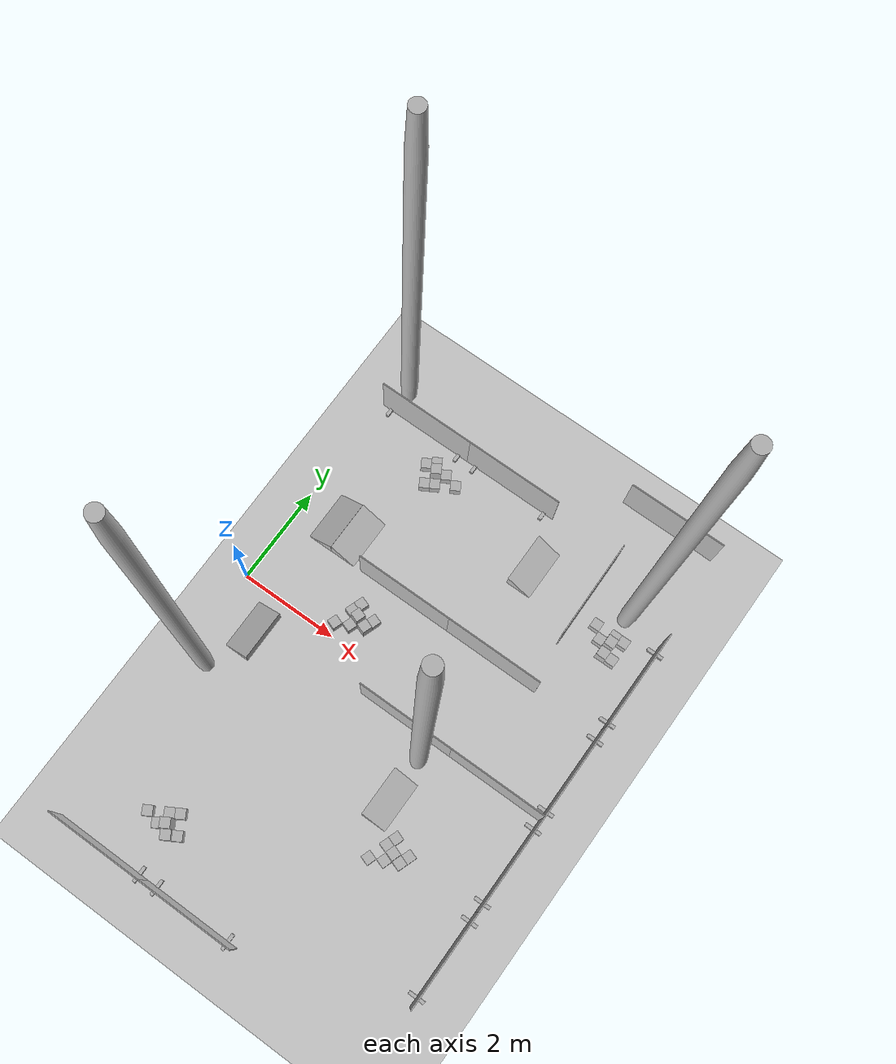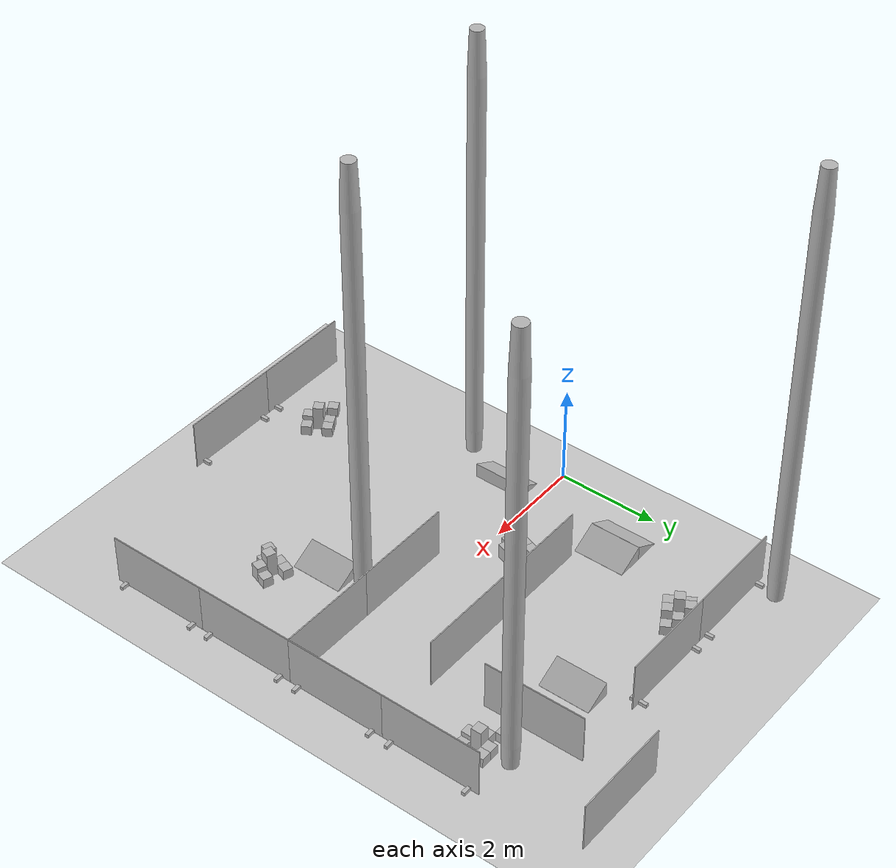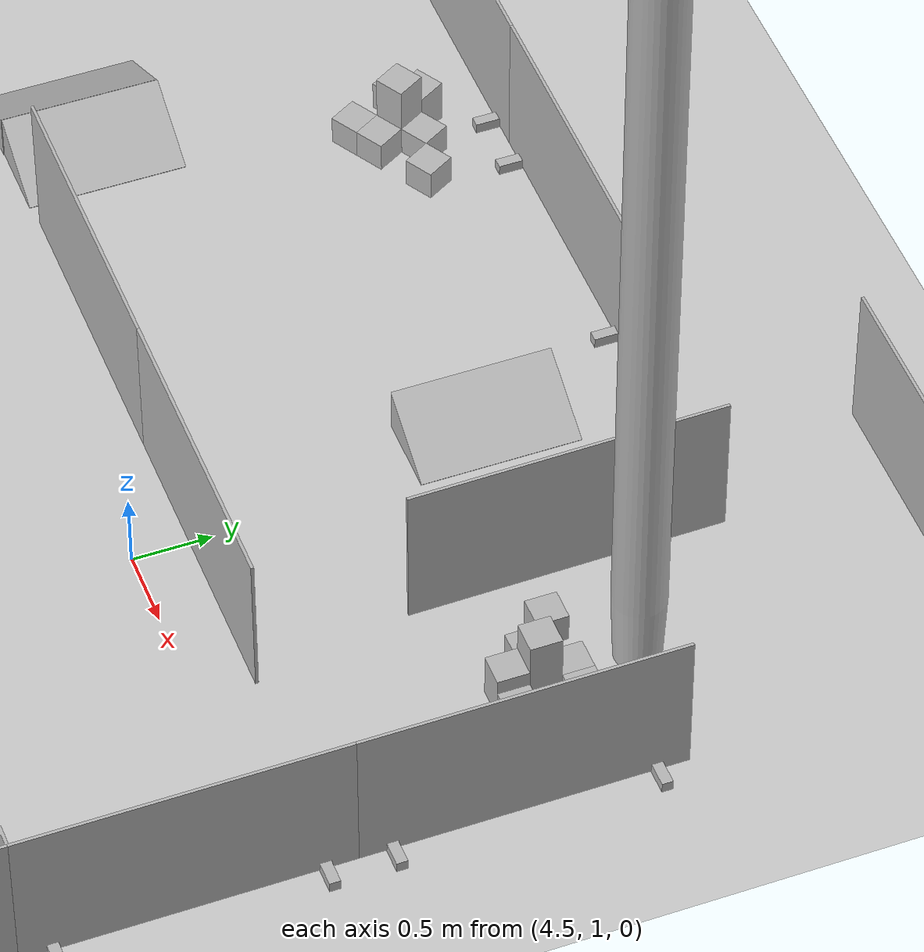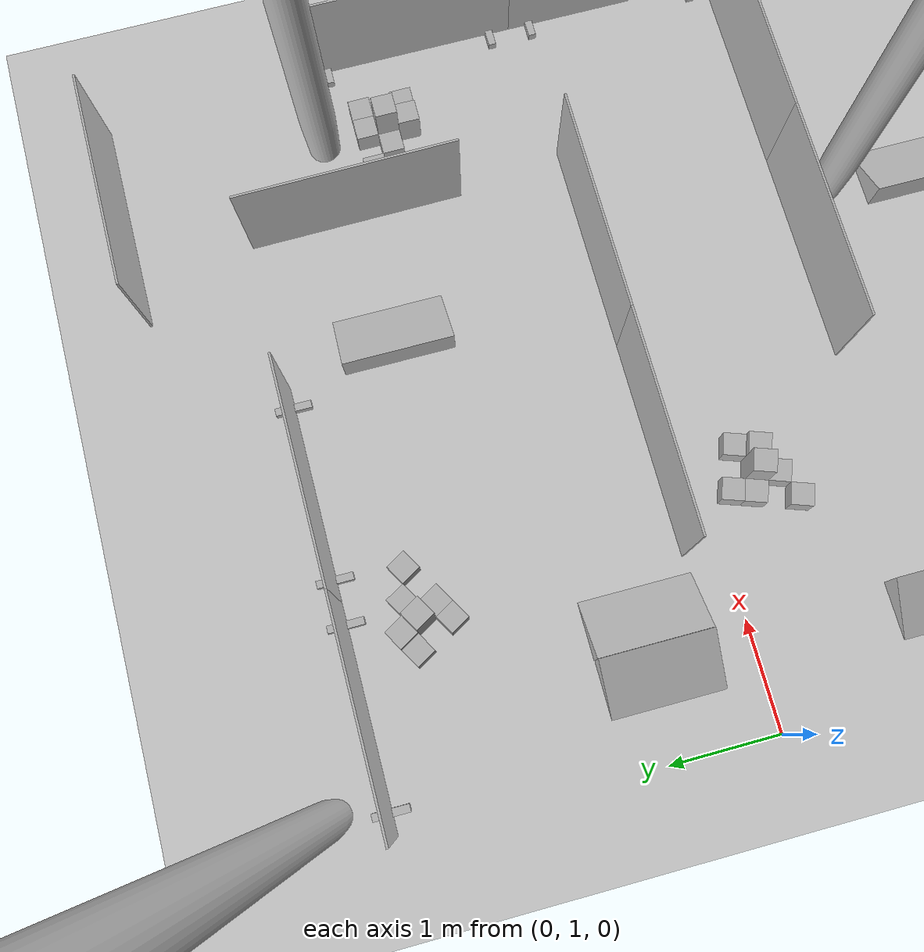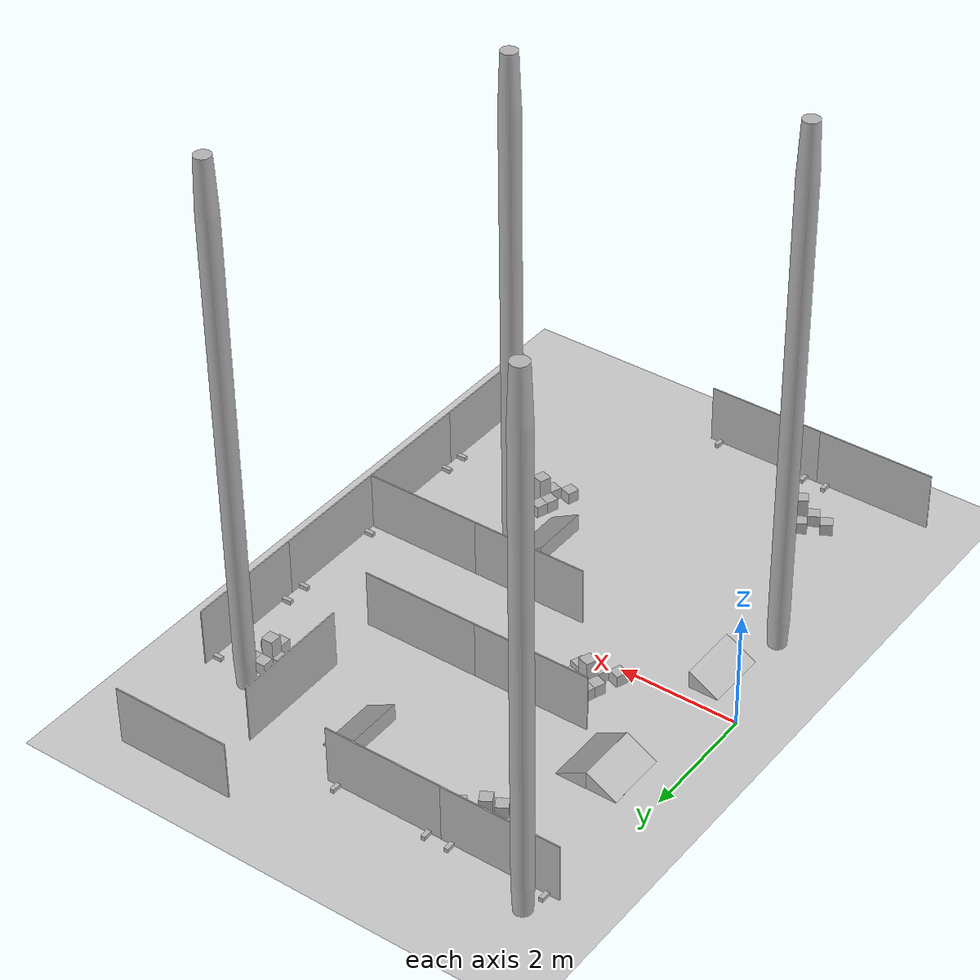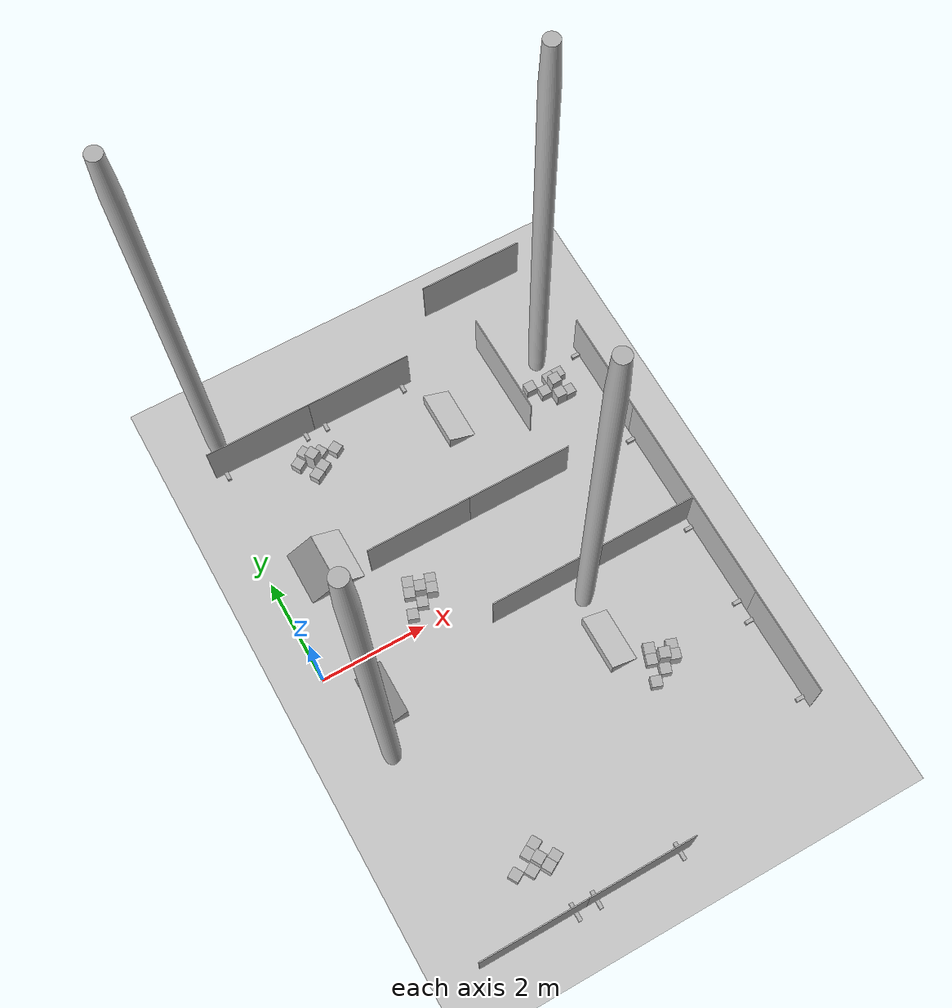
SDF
<sdf version="1.4">
 <world name="arena_HKT_17">
  <include><uri>model://ground_plane</uri></include>
  <include>
   <name>cube_20x20.1714</name>
   <pose>6.283951282501221 3.0660696029663086 0.10000000149011612  0.0 -0.0 3.141592502593994</pose>
   <uri>model://cube_20x20</uri>
  </include>
  <include>
   <name>cube_20x20.1715</name>
   <pose>6.083951473236084 2.866069793701172 0.10000000149011612  0.0 -0.0 3.141592502593994</pose>
   <uri>model://cube_20x20</uri>
  </include>
  <include>
   <name>cube_20x20.1716</name>
   <pose>5.883951663970947 3.0660696029663086 0.10000000149011612  0.0 -0.0 3.141592502593994</pose>
   <uri>model://cube_20x20</uri>
  </include>
  <include>
   <name>cube_20x20.1717</name>
   <pose>6.483951568603516 3.0660696029663086 0.10000000149011612  0.0 -0.0 3.141592502593994</pose>
   <uri>model://cube_20x20</uri>
  </include>
  <include>
   <name>cube_20x20.1718</name>
   <pose>6.483951568603516 2.666069984436035 0.10000000149011612  0.0 -0.0 3.141592502593994</pose>
   <uri>model://cube_20x20</uri>
  </include>
  <include>
   <name>cube_20x30.315</name>
   <pose>6.283951282501221 2.666069984436035 0.15000000596046448  0.0 -0.0 3.141592502593994</pose>
   <uri>model://cube_20x30</uri>
  </include>
  <include>
   <name>cube_20x50.309</name>
   <pose>6.283951282501221 2.866069793701172 0.25  0.0 -0.0 3.141592502593994</pose>
   <uri>model://cube_20x50</uri>
  </include>
  <include>
   <name>cube_20x20.1719</name>
   <pose>6.283951282501221 3.0660696029663086 0.10000000149011612  0.0 -0.0 3.141592502593994</pose>
   <uri>model://cube_20x20</uri>
  </include>
  <include>
   <name>cube_20x20.1720</name>
   <pose>6.083951473236084 2.866069793701172 0.10000000149011612  0.0 -0.0 3.141592502593994</pose>
   <uri>model://cube_20x20</uri>
  </include>
  <include>
   <name>cube_20x20.1721</name>
   <pose>5.883951663970947 3.0660696029663086 0.10000000149011612  0.0 -0.0 3.141592502593994</pose>
   <uri>model://cube_20x20</uri>
  </include>
  <include>
   <name>cube_20x20.1722</name>
   <pose>6.483951568603516 3.0660696029663086 0.10000000149011612  0.0 -0.0 3.141592502593994</pose>
   <uri>model://cube_20x20</uri>
  </include>
  <include>
   <name>cube_20x20.1723</name>
   <pose>6.483951568603516 2.666069984436035 0.10000000149011612  0.0 -0.0 3.141592502593994</pose>
   <uri>model://cube_20x20</uri>
  </include>
  <include>
   <name>cube_20x30.316</name>
   <pose>6.283951282501221 2.666069984436035 0.15000000596046448  0.0 -0.0 3.141592502593994</pose>
   <uri>model://cube_20x30</uri>
  </include>
  <include>
   <name>cube_20x50.310</name>
   <pose>6.283951282501221 2.866069793701172 0.25  0.0 -0.0 3.141592502593994</pose>
   <uri>model://cube_20x50</uri>
  </include>
  <include>
   <name>ramp.154</name>
   <pose>1.2565653324127197 1.8507144451141357 0.15000000596046448  0.0 0.0 0.0</pose>
   <uri>model://ramp</uri>
  </include>
  <include>
   <name>ramp.155</name>
   <pose>0.7436184883117676 1.8457143306732178 0.15000000596046448  0.0 -0.0 3.141592502593994</pose>
   <uri>model://ramp</uri>
  </include>
  <include>
   <name>wall_2x1.683</name>
   <pose>7.071430206298828 -3.531057596206665 0.5130000114440918  0.0 -0.0 4.71238899230957</pose>
   <uri>model://wall_2x1</uri>
  </include>
  <include>
   <name>wall_2x1.684</name>
   <pose>4.071430206298828 -0.5310573577880859 0.5130000114440918  0.0 -0.0 3.141592502593994</pose>
   <uri>model://wall_2x1</uri>
  </include>
  <include>
   <name>wall_2x1.685</name>
   <pose>7.071430206298828 -1.531057596206665 0.5130000114440918  0.0 -0.0 4.71238899230957</pose>
   <uri>model://wall_2x1</uri>
  </include>
  <include>
   <name>wall_2x1.686</name>
   <pose>7.071430206298828 2.468942403793335 0.5130000114440918  0.0 -0.0 4.71238899230957</pose>
   <uri>model://wall_2x1</uri>
  </include>
  <include>
   <name>wall_2x1.687</name>
   <pose>7.071430206298828 0.46894240379333496 0.5130000114440918  0.0 -0.0 4.71238899230957</pose>
   <uri>model://wall_2x1</uri>
  </include>
  <include>
   <name>wall_2x1.688</name>
   <pose>6.071430206298828 -0.5310574769973755 0.5130000114440918  0.0 -0.0 3.141592502593994</pose>
   <uri>model://wall_2x1</uri>
  </include>
  <include>
   <name>wall_stand.1493</name>
   <pose>7.071430206298828 -4.331557273864746 0.03450000286102295  0.0 -0.0 3.141592502593994</pose>
   <uri>model://wall_stand</uri>
  </include>
  <include>
   <name>wall_stand.1494</name>
   <pose>7.071430206298828 -2.730557680130005 0.03450000286102295  0.0 -0.0 3.141592502593994</pose>
   <uri>model://wall_stand</uri>
  </include>
  <include>
   <name>wall_stand.1495</name>
   <pose>7.071430206298828 -2.3315577507019043 0.03450000286102295  0.0 -0.0 3.141592502593994</pose>
   <uri>model://wall_stand</uri>
  </include>
  <include>
   <name>wall_stand.1496</name>
   <pose>7.071430206298828 -0.7305576801300049 0.03450000286102295  0.0 -0.0 3.141592502593994</pose>
   <uri>model://wall_stand</uri>
  </include>
  <include>
   <name>wall_stand.1497</name>
   <pose>7.071430206298828 3.269442319869995 0.03450000286102295  0.0 -0.0 3.141592502593994</pose>
   <uri>model://wall_stand</uri>
  </include>
  <include>
   <name>wall_stand.1498</name>
   <pose>7.071430206298828 1.6684424877166748 0.03450000286102295  0.0 -0.0 3.141592502593994</pose>
   <uri>model://wall_stand</uri>
  </include>
  <include>
   <name>wall_stand.1499</name>
   <pose>7.071430206298828 -0.3315577507019043 0.03450000286102295  0.0 -0.0 3.141592502593994</pose>
   <uri>model://wall_stand</uri>
  </include>
  <include>
   <name>wall_stand.1500</name>
   <pose>7.071430206298828 1.2694423198699951 0.03450000286102295  0.0 -0.0 3.141592502593994</pose>
   <uri>model://wall_stand</uri>
  </include>
  <include>
   <name>wall_2x1.692</name>
   <pose>3.010645627975464 -5.530285835266113 0.5130000114440918  0.0 -0.0 3.141592502593994</pose>
   <uri>model://wall_2x1</uri>
  </include>
  <include>
   <name>wall_2x1.693</name>
   <pose>1.010645866394043 -5.530285835266113 0.5130000114440918  0.0 -0.0 3.141592502593994</pose>
   <uri>model://wall_2x1</uri>
  </include>
  <include>
   <name>wall_stand.1508</name>
   <pose>3.811145544052124 -5.530285835266113 0.03450000286102295  0.0 -0.0 1.570796251296997</pose>
   <uri>model://wall_stand</uri>
  </include>
  <include>
   <name>wall_stand.1509</name>
   <pose>2.210145950317383 -5.530285835266113 0.03450000286102295  0.0 -0.0 1.570796251296997</pose>
   <uri>model://wall_stand</uri>
  </include>
  <include>
   <name>wall_stand.1511</name>
   <pose>1.8111457824707031 -5.530285835266113 0.03450000286102295  0.0 -0.0 1.570796251296997</pose>
   <uri>model://wall_stand</uri>
  </include>
  <include>
   <name>cube_20x20.1734</name>
   <pose>1.5919134616851807 -4.343883514404297 0.10000000149011612  0.0 -0.0 3.6651763916015625</pose>
   <uri>model://cube_20x20</uri>
  </include>
  <include>
   <name>cube_20x20.1735</name>
   <pose>1.5187044143676758 -4.617087364196777 0.10000000149011612  0.0 -0.0 3.6651763916015625</pose>
   <uri>model://cube_20x20</uri>
  </include>
  <include>
   <name>cube_20x20.1736</name>
   <pose>1.2455005645751953 -4.543877601623535 0.10000000149011612  0.0 -0.0 3.6651763916015625</pose>
   <uri>model://cube_20x20</uri>
  </include>
  <include>
   <name>cube_20x20.1737</name>
   <pose>1.7651203870773315 -4.2438859939575195 0.10000000149011612  0.0 -0.0 3.6651763916015625</pose>
   <uri>model://cube_20x20</uri>
  </include>
  <include>
   <name>cube_20x20.1738</name>
   <pose>1.9651148319244385 -4.590298652648926 0.10000000149011612  0.0 -0.0 3.6651763916015625</pose>
   <uri>model://cube_20x20</uri>
  </include>
  <include>
   <name>cube_20x20.1739</name>
   <pose>1.5919134616851807 -4.343883514404297 0.10000000149011612  0.0 -0.0 3.6651763916015625</pose>
   <uri>model://cube_20x20</uri>
  </include>
  <include>
   <name>cube_20x20.1740</name>
   <pose>1.5187044143676758 -4.617087364196777 0.10000000149011612  0.0 -0.0 3.6651763916015625</pose>
   <uri>model://cube_20x20</uri>
  </include>
  <include>
   <name>cube_20x20.1741</name>
   <pose>1.2455005645751953 -4.543877601623535 0.10000000149011612  0.0 -0.0 3.6651763916015625</pose>
   <uri>model://cube_20x20</uri>
  </include>
  <include>
   <name>cube_20x20.1742</name>
   <pose>1.7651203870773315 -4.2438859939575195 0.10000000149011612  0.0 -0.0 3.6651763916015625</pose>
   <uri>model://cube_20x20</uri>
  </include>
  <include>
   <name>cube_20x20.1743</name>
   <pose>1.9651148319244385 -4.590298652648926 0.10000000149011612  0.0 -0.0 3.6651763916015625</pose>
   <uri>model://cube_20x20</uri>
  </include>
  <include>
   <name>cube_20x30.319</name>
   <pose>1.7919080257415771 -4.690296173095703 0.15000000596046448  0.0 -0.0 3.6651763916015625</pose>
   <uri>model://cube_20x30</uri>
  </include>
  <include>
   <name>cube_20x30.320</name>
   <pose>1.7919080257415771 -4.690296173095703 0.15000000596046448  0.0 -0.0 3.6651763916015625</pose>
   <uri>model://cube_20x30</uri>
  </include>
  <include>
   <name>cube_20x50.313</name>
   <pose>1.691910743713379 -4.51708984375 0.25  0.0 -0.0 3.6651763916015625</pose>
   <uri>model://cube_20x50</uri>
  </include>
  <include>
   <name>cube_20x50.314</name>
   <pose>1.691910743713379 -4.51708984375 0.25  0.0 -0.0 3.6651763916015625</pose>
   <uri>model://cube_20x50</uri>
  </include>
  <include>
   <name>cube_20x20.1744</name>
   <pose>2.0343916416168213 0.613365888595581 0.10000000149011612  0.0 0.0 4.376082897186279</pose>
   <uri>model://cube_20x20</uri>
  </include>
  <include>
   <name>cube_20x20.1745</name>
   <pose>2.1571874618530273 0.358569860458374 0.10000000149011612  0.0 0.0 4.376082897186279</pose>
   <uri>model://cube_20x20</uri>
  </include>
  <include>
   <name>cube_20x20.1746</name>
   <pose>1.902390956878662 0.23577475547790527 0.10000000149011612  0.0 0.0 4.376082897186279</pose>
   <uri>model://cube_20x20</uri>
  </include>
  <include>
   <name>cube_20x20.1747</name>
   <pose>2.1003925800323486 0.8021619319915771 0.10000000149011612  0.0 0.0 4.376082897186279</pose>
   <uri>model://cube_20x20</uri>
  </include>
  <include>
   <name>cube_20x20.1748</name>
   <pose>2.4779841899871826 0.6701610088348389 0.10000000149011612  0.0 0.0 4.376082897186279</pose>
   <uri>model://cube_20x20</uri>
  </include>
  <include>
   <name>cube_20x20.1749</name>
   <pose>2.0343916416168213 0.613365888595581 0.10000000149011612  0.0 0.0 4.376082897186279</pose>
   <uri>model://cube_20x20</uri>
  </include>
  <include>
   <name>cube_20x20.1750</name>
   <pose>2.1571874618530273 0.358569860458374 0.10000000149011612  0.0 0.0 4.376082897186279</pose>
   <uri>model://cube_20x20</uri>
  </include>
  <include>
   <name>cube_20x20.1751</name>
   <pose>1.902390956878662 0.23577475547790527 0.10000000149011612  0.0 0.0 4.376082897186279</pose>
   <uri>model://cube_20x20</uri>
  </include>
  <include>
   <name>cube_20x20.1752</name>
   <pose>2.1003925800323486 0.8021619319915771 0.10000000149011612  0.0 0.0 4.376082897186279</pose>
   <uri>model://cube_20x20</uri>
  </include>
  <include>
   <name>cube_20x20.1753</name>
   <pose>2.4779841899871826 0.6701610088348389 0.10000000149011612  0.0 0.0 4.376082897186279</pose>
   <uri>model://cube_20x20</uri>
  </include>
  <include>
   <name>cube_20x30.321</name>
   <pose>2.4119834899902344 0.4813649654388428 0.15000000596046448  0.0 0.0 4.376082897186279</pose>
   <uri>model://cube_20x30</uri>
  </include>
  <include>
   <name>cube_20x30.322</name>
   <pose>2.4119834899902344 0.4813649654388428 0.15000000596046448  0.0 0.0 4.376082897186279</pose>
   <uri>model://cube_20x30</uri>
  </include>
  <include>
   <name>cube_20x50.315</name>
   <pose>2.2231879234313965 0.5473649501800537 0.25  0.0 0.0 4.376082897186279</pose>
   <uri>model://cube_20x50</uri>
  </include>
  <include>
   <name>cube_20x50.316</name>
   <pose>2.2231879234313965 0.5473649501800537 0.25  0.0 0.0 4.376082897186279</pose>
   <uri>model://cube_20x50</uri>
  </include>
  <include>
   <name>ramp.157</name>
   <pose>4.665114402770996 -1.8227006196975708 0.15000000596046448  0.0 0.0 0.0</pose>
   <uri>model://ramp</uri>
  </include>
  <include>
   <name>ramp.158</name>
   <pose>0.7436184883117676 -0.7737877368927002 0.15000000596046448  0.0 -0.0 3.141592502593994</pose>
   <uri>model://ramp</uri>
  </include>
  <include>
   <name>cube_20x20.1764</name>
   <pose>1.8325855731964111 3.536480188369751 0.10000000149011612  0.0 0.0 6.806769371032715</pose>
   <uri>model://cube_20x20</uri>
  </include>
  <include>
   <name>cube_20x20.1765</name>
   <pose>1.905794620513916 3.8096840381622314 0.10000000149011612  0.0 0.0 6.806769371032715</pose>
   <uri>model://cube_20x20</uri>
  </include>
  <include>
   <name>cube_20x20.1766</name>
   <pose>2.1789984703063965 3.7364747524261475 0.10000000149011612  0.0 0.0 6.806769371032715</pose>
   <uri>model://cube_20x20</uri>
  </include>
  <include>
   <name>cube_20x20.1767</name>
   <pose>1.6593786478042603 3.4364826679229736 0.10000000149011612  0.0 0.0 6.806769371032715</pose>
   <uri>model://cube_20x20</uri>
  </include>
  <include>
   <name>cube_20x20.1768</name>
   <pose>1.4593842029571533 3.782895803451538 0.10000000149011612  0.0 0.0 6.806769371032715</pose>
   <uri>model://cube_20x20</uri>
  </include>
  <include>
   <name>cube_20x20.1769</name>
   <pose>1.8325855731964111 3.536480188369751 0.10000000149011612  0.0 0.0 6.806769371032715</pose>
   <uri>model://cube_20x20</uri>
  </include>
  <include>
   <name>cube_20x20.1770</name>
   <pose>1.905794620513916 3.8096840381622314 0.10000000149011612  0.0 0.0 6.806769371032715</pose>
   <uri>model://cube_20x20</uri>
  </include>
  <include>
   <name>cube_20x20.1771</name>
   <pose>2.1789984703063965 3.7364747524261475 0.10000000149011612  0.0 0.0 6.806769371032715</pose>
   <uri>model://cube_20x20</uri>
  </include>
  <include>
   <name>cube_20x20.1772</name>
   <pose>1.6593786478042603 3.4364826679229736 0.10000000149011612  0.0 0.0 6.806769371032715</pose>
   <uri>model://cube_20x20</uri>
  </include>
  <include>
   <name>cube_20x20.1773</name>
   <pose>1.4593842029571533 3.782895803451538 0.10000000149011612  0.0 0.0 6.806769371032715</pose>
   <uri>model://cube_20x20</uri>
  </include>
  <include>
   <name>cube_20x30.325</name>
   <pose>1.6325910091400146 3.8828933238983154 0.15000000596046448  0.0 0.0 6.806769371032715</pose>
   <uri>model://cube_20x30</uri>
  </include>
  <include>
   <name>cube_20x30.326</name>
   <pose>1.6325910091400146 3.8828933238983154 0.15000000596046448  0.0 0.0 6.806769371032715</pose>
   <uri>model://cube_20x30</uri>
  </include>
  <include>
   <name>cube_20x50.319</name>
   <pose>1.732588291168213 3.7096869945526123 0.25  0.0 0.0 6.806769371032715</pose>
   <uri>model://cube_20x50</uri>
  </include>
  <include>
   <name>cube_20x50.320</name>
   <pose>1.732588291168213 3.7096869945526123 0.25  0.0 0.0 6.806769371032715</pose>
   <uri>model://cube_20x50</uri>
  </include>
  <include>
   <name>wall_2x1.695</name>
   <pose>3.0413644313812256 4.337547779083252 0.5130000114440918  0.0 -0.0 6.283185005187988</pose>
   <uri>model://wall_2x1</uri>
  </include>
  <include>
   <name>wall_2x1.697</name>
   <pose>1.0413646697998047 4.337548732757568 0.5130000114440918  0.0 -0.0 6.283185005187988</pose>
   <uri>model://wall_2x1</uri>
  </include>
  <include>
   <name>wall_stand.1515</name>
   <pose>3.841865062713623 4.337547779083252 0.03450000286102295  0.0 -0.0 4.71238899230957</pose>
   <uri>model://wall_stand</uri>
  </include>
  <include>
   <name>wall_stand.1516</name>
   <pose>2.2408647537231445 4.337548732757568 0.03450000286102295  0.0 -0.0 4.71238899230957</pose>
   <uri>model://wall_stand</uri>
  </include>
  <include>
   <name>wall_stand.1517</name>
   <pose>1.8418647050857544 4.337548732757568 0.03450000286102295  0.0 -0.0 4.71238899230957</pose>
   <uri>model://wall_stand</uri>
  </include>
  <include>
   <name>wall_stand.1518</name>
   <pose>0.24086451530456543 4.337548732757568 0.03450000286102295  0.0 -0.0 4.71238899230957</pose>
   <uri>model://wall_stand</uri>
  </include>
  <include>
   <name>wall_2x1.702</name>
   <pose>5.476836204528809 3.358290672302246 0.5130000114440918  0.0 -0.0 7.863871097564697</pose>
   <uri>model://wall_2x1</uri>
  </include>
  <include>
   <name>wall_2x1.705</name>
   <pose>5.946268081665039 5.418047904968262 0.5130000114440918  0.0 -0.0 9.42477798461914</pose>
   <uri>model://wall_2x1</uri>
  </include>
  <include>
   <name>wall_2x1.706</name>
   <pose>2.6684865951538086 1.3634209632873535 0.5130000114440918  0.0 -0.0 9.42477798461914</pose>
   <uri>model://wall_2x1</uri>
  </include>
  <include>
   <name>wall_2x1.707</name>
   <pose>4.668486595153809 1.3634209632873535 0.5130000114440918  0.0 -0.0 9.42477798461914</pose>
   <uri>model://wall_2x1</uri>
  </include>
  <include>
   <name>cube_20x20.1784</name>
   <pose>5.100072860717773 -2.5086545944213867 0.10000000149011612  0.0 0.0 4.376082897186279</pose>
   <uri>model://cube_20x20</uri>
  </include>
  <include>
   <name>cube_20x20.1785</name>
   <pose>5.222868919372559 -2.7634506225585938 0.10000000149011612  0.0 0.0 4.376082897186279</pose>
   <uri>model://cube_20x20</uri>
  </include>
  <include>
   <name>cube_20x20.1786</name>
   <pose>4.968071937561035 -2.8862462043762207 0.10000000149011612  0.0 0.0 4.376082897186279</pose>
   <uri>model://cube_20x20</uri>
  </include>
  <include>
   <name>cube_20x20.1787</name>
   <pose>5.166073799133301 -2.3198585510253906 0.10000000149011612  0.0 0.0 4.376082897186279</pose>
   <uri>model://cube_20x20</uri>
  </include>
  <include>
   <name>cube_20x20.1788</name>
   <pose>5.543665409088135 -2.451859474182129 0.10000000149011612  0.0 0.0 4.376082897186279</pose>
   <uri>model://cube_20x20</uri>
  </include>
  <include>
   <name>cube_20x20.1789</name>
   <pose>5.100072860717773 -2.5086545944213867 0.10000000149011612  0.0 0.0 4.376082897186279</pose>
   <uri>model://cube_20x20</uri>
  </include>
  <include>
   <name>cube_20x20.1790</name>
   <pose>5.222868919372559 -2.7634506225585938 0.10000000149011612  0.0 0.0 4.376082897186279</pose>
   <uri>model://cube_20x20</uri>
  </include>
  <include>
   <name>cube_20x20.1791</name>
   <pose>4.968071937561035 -2.8862462043762207 0.10000000149011612  0.0 0.0 4.376082897186279</pose>
   <uri>model://cube_20x20</uri>
  </include>
  <include>
   <name>cube_20x20.1792</name>
   <pose>5.166073799133301 -2.3198585510253906 0.10000000149011612  0.0 0.0 4.376082897186279</pose>
   <uri>model://cube_20x20</uri>
  </include>
  <include>
   <name>cube_20x20.1793</name>
   <pose>5.543665409088135 -2.451859474182129 0.10000000149011612  0.0 0.0 4.376082897186279</pose>
   <uri>model://cube_20x20</uri>
  </include>
  <include>
   <name>cube_20x30.329</name>
   <pose>5.477664947509766 -2.640655994415283 0.15000000596046448  0.0 0.0 4.376082897186279</pose>
   <uri>model://cube_20x30</uri>
  </include>
  <include>
   <name>cube_20x30.330</name>
   <pose>5.477664947509766 -2.640655994415283 0.15000000596046448  0.0 0.0 4.376082897186279</pose>
   <uri>model://cube_20x30</uri>
  </include>
  <include>
   <name>cube_20x50.323</name>
   <pose>5.2888689041137695 -2.574655532836914 0.25  0.0 0.0 4.376082897186279</pose>
   <uri>model://cube_20x50</uri>
  </include>
  <include>
   <name>cube_20x50.324</name>
   <pose>5.2888689041137695 -2.574655532836914 0.25  0.0 0.0 4.376082897186279</pose>
   <uri>model://cube_20x50</uri>
  </include>
  <include>
   <name>ramp.162</name>
   <pose>4.30116605758667 3.3036534786224365 0.15000000596046448  0.0 -0.0 6.283185005187988</pose>
   <uri>model://ramp</uri>
  </include>
  <include>
   <name>barrel_110l.128</name>
   <pose>0.42498016357421875 -1.7846715450286865 0.0  0.0 0.0 0.0</pose>
   <uri>model://barrel_110l</uri>
  </include>
  <include>
   <name>barrel_110l.130</name>
   <pose>0.3278452157974243 4.79020881652832 0.0  0.0 0.0 0.0</pose>
   <uri>model://barrel_110l</uri>
  </include>
  <include>
   <name>barrel_110l.132</name>
   <pose>4.665648460388184 -0.9495348930358887 0.0  0.0 0.0 0.0</pose>
   <uri>model://barrel_110l</uri>
  </include>
  <include>
   <name>barrel_110l.133</name>
   <pose>6.263016223907471 3.480461835861206 0.0  0.0 0.0 0.0</pose>
   <uri>model://barrel_110l</uri>
  </include>
 </world>
</sdf>
